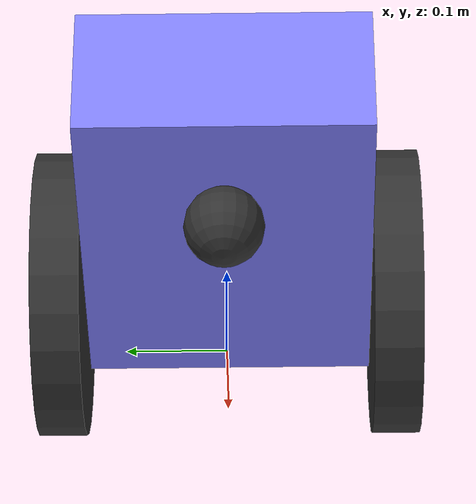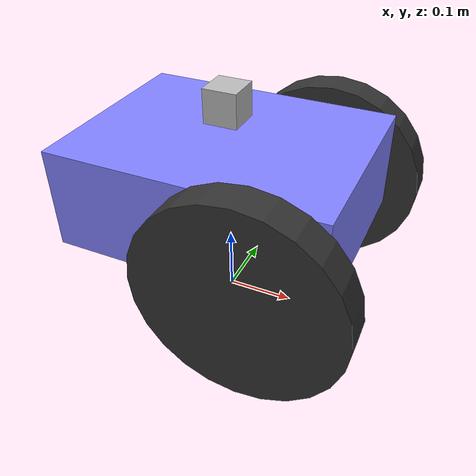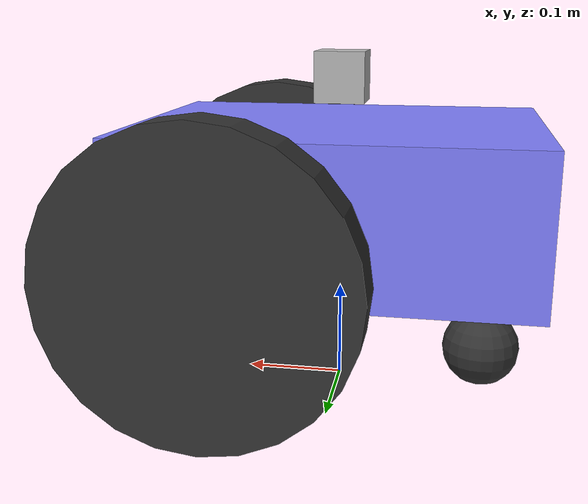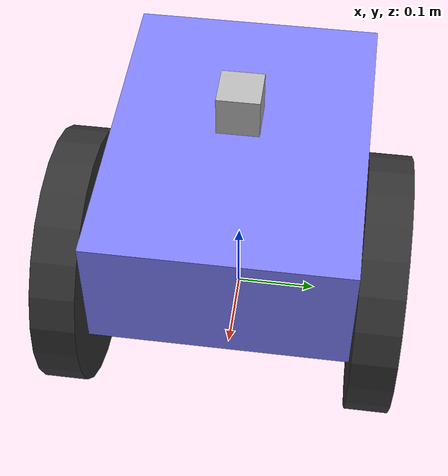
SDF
<?xml version="1.0" ?>
<sdf version="1.8">
    <model name='diff_drive'>

      <!-- Model frame sits on the ground plane (z=0 = floor) -->

      <link name='chassis'>
        <pose>0 0 0.20 0 0 0</pose>
        <inertial>
          <mass>2.0</mass>
          <inertia>
            <ixx>0.018750</ixx>
            <ixy>0</ixy>
            <ixz>0</ixz>
            <iyy>0.030417</iyy>
            <iyz>0</iyz>
            <izz>0.041667</izz>
          </inertia>
        </inertial>
        <visual name='visual_chassis'>
          <geometry>
            <box>
              <size>0.4 0.3 0.15</size>
            </box>
          </geometry>
          <material>
            <ambient>0.5 0.5 1.0 1</ambient>
            <diffuse>0.5 0.5 1.0 1</diffuse>
            <specular>0.0 0.0 1.0 1</specular>
          </material>
        </visual>
        <collision name='collision_chassis'>
          <geometry>
            <box>
              <size>0.4 0.3 0.15</size>
            </box>
          </geometry>
        </collision>
      </link>

      <link name='left_wheel'>
        <pose>0.10 0.175 0.15 -1.5707 0 0</pose>
        <inertial>
          <mass>0.5</mass>
          <inertia>
            <ixx>0.0029167</ixx>
            <ixy>0</ixy>
            <ixz>0</ixz>
            <iyy>0.0029167</iyy>
            <iyz>0</iyz>
            <izz>0.0056250</izz>
          </inertia>
        </inertial>
        <visual name='visual_left_wheel'>
          <geometry>
            <cylinder>
              <radius>0.15</radius>
              <length>0.05</length>
            </cylinder>
          </geometry>
          <material>
            <ambient>0.2 0.2 0.2 1</ambient>
            <diffuse>0.2 0.2 0.2 1</diffuse>
            <specular>0.2 0.2 0.2 1</specular>
          </material>
        </visual>
        <collision name='collision_left_wheel'>
          <geometry>
            <cylinder>
              <radius>0.15</radius>
              <length>0.05</length>
            </cylinder>
          </geometry>
          <surface>
            <friction>
              <ode>
                <mu>1.0</mu>
                <mu2>1.0</mu2>
              </ode>
            </friction>
          </surface>
        </collision>
      </link>

      <link name='right_wheel'>
        <pose>0.10 -0.175 0.15 -1.5707 0 0</pose>
        <inertial>
          <mass>0.5</mass>
          <inertia>
            <ixx>0.0029167</ixx>
            <ixy>0</ixy>
            <ixz>0</ixz>
            <iyy>0.0029167</iyy>
            <iyz>0</iyz>
            <izz>0.0056250</izz>
          </inertia>
        </inertial>
        <visual name='visual_right_wheel'>
          <geometry>
            <cylinder>
              <radius>0.15</radius>
              <length>0.05</length>
            </cylinder>
          </geometry>
          <material>
            <ambient>0.2 0.2 0.2 1</ambient>
            <diffuse>0.2 0.2 0.2 1</diffuse>
            <specular>0.2 0.2 0.2 1</specular>
          </material>
        </visual>
        <collision name='collision_right_wheel'>
          <geometry>
            <cylinder>
              <radius>0.15</radius>
              <length>0.05</length>
            </cylinder>
          </geometry>
          <surface>
            <friction>
              <ode>
                <mu>1.0</mu>
                <mu2>1.0</mu2>
              </ode>
            </friction>
          </surface>
        </collision>
      </link>

      <link name='caster'>
        <pose>-0.15 0 0.04 0 0 0</pose>
        <inertial>
          <mass>0.1</mass>
          <inertia>
            <ixx>0.000064</ixx>
            <ixy>0</ixy>
            <ixz>0</ixz>
            <iyy>0.000064</iyy>
            <iyz>0</iyz>
            <izz>0.000064</izz>
          </inertia>
        </inertial>
        <visual name='visual_caster'>
          <geometry>
            <sphere>
              <radius>0.04</radius>
            </sphere>
          </geometry>
          <material>
            <ambient>0.2 0.2 0.2 1</ambient>
            <diffuse>0.2 0.2 0.2 1</diffuse>
            <specular>0.2 0.2 0.2 1</specular>
          </material>
        </visual>
        <collision name='collision_caster'>
          <geometry>
            <sphere>
              <radius>0.04</radius>
            </sphere>
          </geometry>
          <surface>
            <friction>
              <ode>
                <mu>0.05</mu>
                <mu2>0.05</mu2>
              </ode>
            </friction>
          </surface>
        </collision>
      </link>

      <link name="lidar_link">
        <pose>0 0 0.32 0 0 0</pose>
        <inertial>
          <mass>0.05</mass>
          <inertia>
            <ixx>0.0000208</ixx>
            <ixy>0</ixy>
            <ixz>0</ixz>
            <iyy>0.0000208</iyy>
            <iyz>0</iyz>
            <izz>0.0000208</izz>
          </inertia>
        </inertial>
        <collision name="collision">
          <geometry>
            <box>
              <size>0.05 0.05 0.05</size>
            </box>
          </geometry>
        </collision>
        <visual name="visual">
          <geometry>
            <box>
              <size>0.05 0.05 0.05</size>
            </box>
          </geometry>
        </visual>
        <sensor name='gpu_lidar' type='gpu_lidar'>
          <pose>0 0 0 0 0 0</pose>
          <topic>scan</topic>
          <gz_frame_id>diff_drive/lidar_link</gz_frame_id>
          <update_rate>10</update_rate>
          <lidar>
            <scan>
              <horizontal>
                <samples>640</samples>
                <resolution>1</resolution>
                <min_angle>-3.141592</min_angle>
                <max_angle>3.141592</max_angle>
              </horizontal>
              <vertical>
                <samples>1</samples>
                <resolution>1</resolution>
                <min_angle>0.0</min_angle>
                <max_angle>0.0</max_angle>
              </vertical>
            </scan>
            <range>
              <min>0.08</min>
              <max>20.0</max>
              <resolution>0.01</resolution>
            </range>
          </lidar>
          <visualize>true</visualize>
        </sensor>
      </link>

      <joint name='lidar_joint' type='fixed'>
        <parent>chassis</parent>
        <child>lidar_link</child>
      </joint>

      <joint name='left_wheel_joint' type='revolute'>
        <parent>chassis</parent>
        <child>left_wheel</child>
        <axis>
          <xyz>0 0 1</xyz>
          <limit>
            <lower>-1.79769e+308</lower>
            <upper>1.79769e+308</upper>
          </limit>
        </axis>
      </joint>

      <joint name='right_wheel_joint' type='revolute'>
        <parent>chassis</parent>
        <child>right_wheel</child>
        <axis>
          <xyz>0 0 1</xyz>
          <limit>
            <lower>-1.79769e+308</lower>
            <upper>1.79769e+308</upper>
          </limit>
        </axis>
      </joint>

      <joint name='caster_wheel' type='ball'>
        <parent>chassis</parent>
        <child>caster</child>
      </joint>

      <plugin
        filename="ignition-gazebo-diff-drive-system"
        name="ignition::gazebo::systems::DiffDrive">
        <left_joint>left_wheel_joint</left_joint>
        <right_joint>right_wheel_joint</right_joint>
        <wheel_separation>0.35</wheel_separation>
        <wheel_radius>0.15</wheel_radius>
        <odom_publish_frequency>30</odom_publish_frequency>
        <max_linear_acceleration>1</max_linear_acceleration>
        <min_linear_acceleration>-1</min_linear_acceleration>
        <max_angular_acceleration>2</max_angular_acceleration>
        <min_angular_acceleration>-2</min_angular_acceleration>
        <max_linear_velocity>0.5</max_linear_velocity>
        <min_linear_velocity>-0.5</min_linear_velocity>
        <max_angular_velocity>1</max_angular_velocity>
        <min_angular_velocity>-1</min_angular_velocity>
      </plugin>

      <self_collide>true</self_collide>
      <plugin
        filename="ignition-gazebo-joint-state-publisher-system"
        name="ignition::gazebo::systems::JointStatePublisher">
      </plugin>

      <plugin
        filename="ignition-gazebo-pose-publisher-system"
        name="ignition::gazebo::systems::PosePublisher">
        <publish_link_pose>true</publish_link_pose>
        <use_pose_vector_msg>true</use_pose_vector_msg>
        <static_publisher>true</static_publisher>
        <static_update_frequency>1</static_update_frequency>
      </plugin>

      <plugin
        filename="ignition-gazebo-odometry-publisher-system"
        name="ignition::gazebo::systems::OdometryPublisher">
        <odom_frame>odom</odom_frame>
        <robot_base_frame>diff_drive</robot_base_frame>
      </plugin>

    </model>
</sdf>
